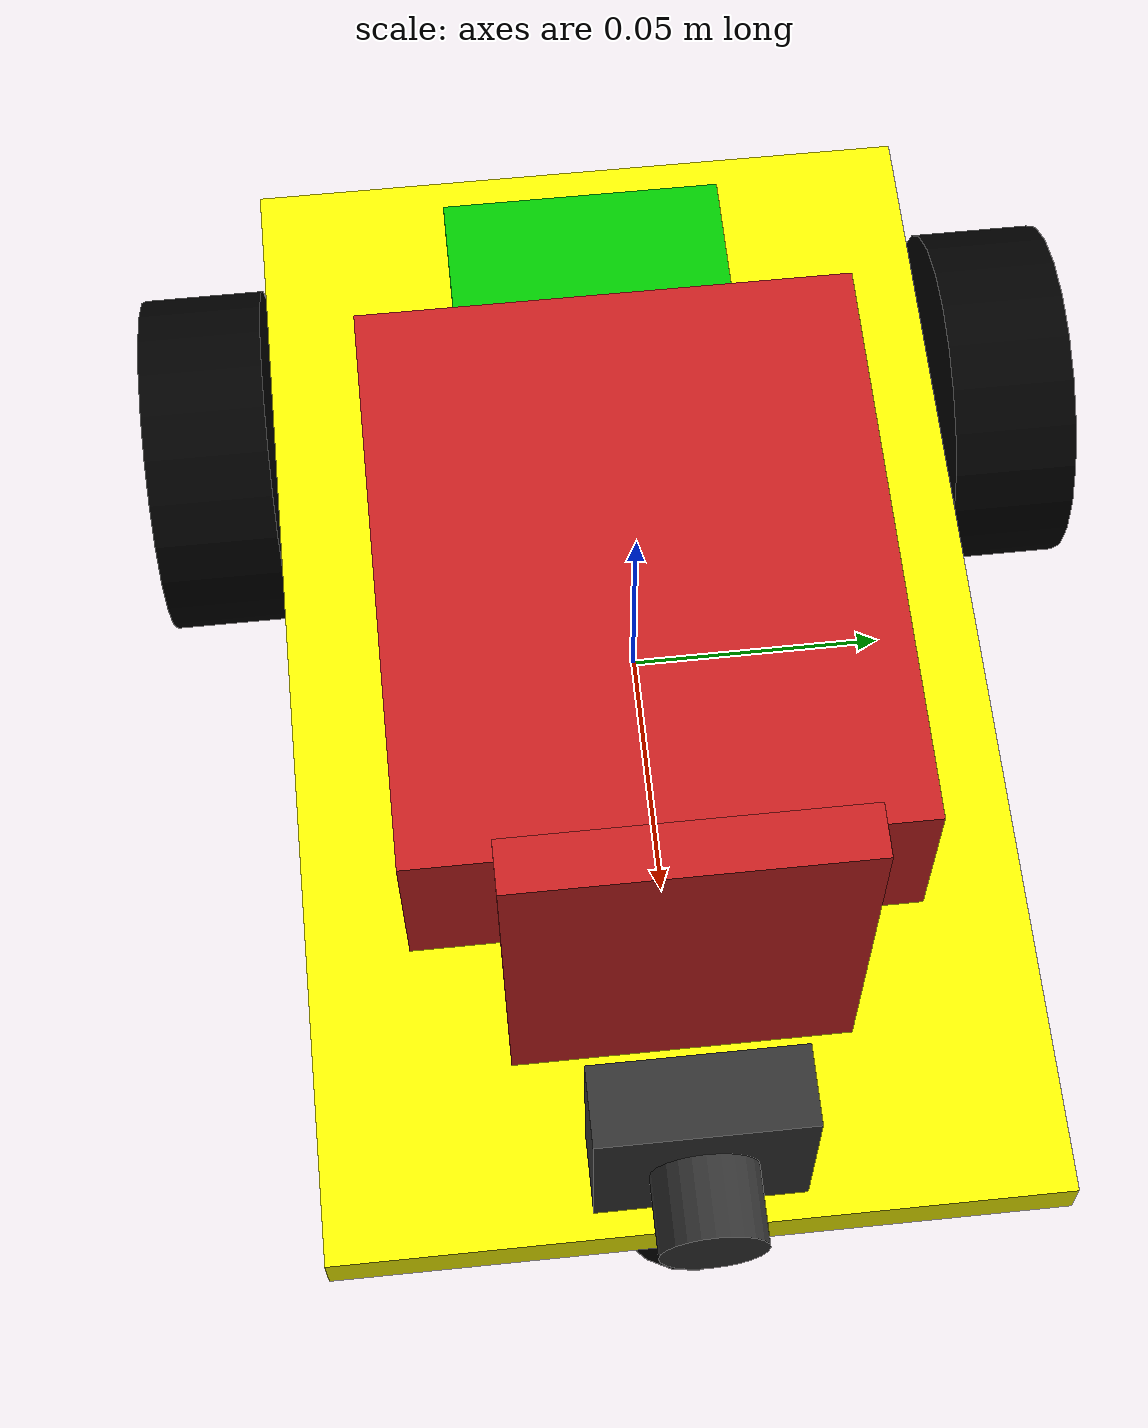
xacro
<?xml version='1.0'?>

<!-- choose a name space and start xacro -->
<robot name="dr_robotas"
	xmlns:xacro="http://www.ros.org/wiki/xacro">

	<!-- Start by including all required xacro files which hold the macros -->
	<xacro:include filename="$(find dviratis_robotas)/urdf/diff_drive.gazebo" />
	<xacro:include filename="$(find dviratis_robotas)/urdf/materials.xacro" />
	<xacro:include filename="$(find dviratis_robotas)/urdf/macros.xacro" />
	<xacro:include filename="$(find dviratis_robotas)/urdf/parameter.xacro" />

	<!-- Create a dummy link as base link -->
	<link name='base_link'>
		<pose>0 0 0 0 0 0</pose>
	</link>
	<joint type="fixed" name="base_link_to_chassis">
		<child link="chassis_link"/>
		<parent link="base_link"/>
	</joint>

	<!-- Define the chassis of the differential drive robot, which is our base -->
	<link name='chassis_link'>
		<!-- Define inertial system for the chassis -->
		<inertial>
			<mass value="${m_chassis}"/>
			<xacro:box_inertia m="${m_chassis}" x="${x_chassis}" y="${y_chassis}" z="${z_chassis}"/>
		</inertial>
		<!-- Define collision sorrounding box -->
		<collision name='collision'>
			<origin xyz="0 0 0" rpy=" 0 0 0"/>
			<geometry>
				<box size="${x_chassis} ${y_chassis} ${z_chassis}"/>
			</geometry>
		</collision>
		<!-- Define visualization structure -->
		<visual name='base_link_visual'>
			<origin xyz="0 0 0" rpy=" 0 0 0"/>
			<geometry>
				<box size="${x_chassis} ${y_chassis} ${z_chassis}"/>
			</geometry>
			<material name="yellow"/>
		</visual>

		<!-- RPY and batt block -->
		<collision name='batt_rpy_collision'>
			<origin xyz="${offset_rpybat} 0 ${z_rpybat/2+z_chassis/2}" rpy=" 0 0 0"/>
			<geometry>
				<box size="${x_rpybat} ${y_rpybat} ${z_rpybat}" />
			</geometry>
			<surface>
				<friction>
					<ode>
						<mu>0</mu>
						<mu2>0</mu2>
						<slip1>1.0</slip1>
						<slip2>1.0</slip2>
					</ode>
				</friction>
			</surface>
		</collision>
		<visual name='batt_rpy_visual'>
			<origin xyz="${offset_rpybat} 0 ${z_rpybat/2+z_chassis/2}" rpy=" 0 0 0"/>
			<geometry>
				<box size="${x_rpybat} ${y_rpybat} ${z_rpybat}" />
			</geometry>
			<material name="red">
				<color rgba="0.80078125 0.12890625 0.1328125 1.0"/>
			</material>
		</visual>

		<!-- Add the caster wheel! Here we simply assume complete slippage, thus we do not require that it rotates! -->
		<collision name='caster_collision'>
			<origin xyz="${-(r_wheel/2)+x_chassis/2} 0 ${-r_wheel/2-z_chassis/2}" rpy=" 0 0 0"/>
			<geometry>
				<sphere radius="${r_wheel/2}"/>
			</geometry>
			<surface>
				<friction>
					<ode>
						<mu>0</mu>
						<mu2>0</mu2>
						<slip1>1.0</slip1>
						<slip2>1.0</slip2>
					</ode>
				</friction>
			</surface>
		</collision>
		<visual name='caster_visual'>
			<origin xyz="${-(r_wheel/2)+x_chassis/2} 0 ${-r_wheel/2-z_chassis/2}" rpy=" 0 0 0"/>
			<geometry>
				<sphere radius="${r_wheel/2}"/>
			</geometry>
			<material name="black"/>
		</visual>
	</link>

	<!-- Radar -->
	<link name="radar">
		<visual>
			<origin xyz="0 0 ${-z_radar/4}" rpy="0 0 0"/>
			<geometry>
				<box size="${x_radar} ${y_radar} ${z_radar}" />
			</geometry>
			<material name="red"/>
		</visual>
		<collision>
			<geometry>
				<box size="${x_radar} ${y_radar} ${z_radar}" />
			</geometry>
		</collision>
	</link>

	<joint type="fixed" name="base_link_to_radar">
		<origin xyz="${0.015+x_radar/2+x_rpybat/2+offset_rpybat} 0 ${z_radar/2+z_chassis/2+z_radar/4}" rpy="0 0 0"/>
		<child link="radar"/>
		<parent link="base_link"/>
	</joint>

	<!-- Camera -->
	<link name="camera_link">
		<!-- lens -->
		<visual name="cam_lens_visual">
			<origin xyz="0 0 0" rpy="0 1.5707 0"/>
			<geometry>
				<cylinder radius="${r_camera}" length="${h_camera}"/>
			</geometry>
			<material name="grey"/>
		</visual>
		<collision name="cam_lens_collision">
			<origin xyz="0 0 0" rpy="0 1.5707 0"/>
			<geometry>
				<cylinder radius="${r_camera}" length="${h_camera}"/>
			</geometry>
		</collision>

		<!-- chassis -->
		<visual name="cam_chassis_visual">
			<origin xyz="${-h_camera/2+h_camera/4} 0 0" rpy="0 0 0"/>
			<geometry>
				<box size="${h_camera/2} ${xy_cam_chassis} ${xy_cam_chassis}" />
			</geometry>
			<material name="grey"/>
		</visual>
		<collision name="cam_chassis_collision">
			<geometry>
				<box size="${xy_cam_chassis} ${xy_cam_chassis} ${h_camera/3}" />
			</geometry>
		</collision>
	</link>

	<joint type="fixed" name="base_link_to_cam">
		<origin xyz="${h_camera/2+0.015*2+x_radar+(x_rpybat/2+offset_rpybat)} 0 ${xy_cam_chassis/2+z_chassis/2}" rpy="0 0 0"/>
		<child link="camera_link"/>
		<parent link="base_link"/>
	</joint>

	<link name="pcb_link">
		<visual name="pcb_link_visual">
			<geometry>
				<box size="${x_pcb} ${y_pcb} ${z_pcb}" />
			</geometry>
			<material name="green"/>
		</visual>
		<collision name="pcb_link_collision">
			<geometry>
				<box size="${x_pcb} ${y_pcb} ${z_pcb}" />
			</geometry>
		</collision>
	</link>

	<joint type="fixed" name="base_link_to_pcb">
		<origin xyz="${-(x_pcb/2+x_rpybat/2-offset_rpybat+0.01)} 0 ${z_pcb/2+z_chassis/2}" rpy="0 0 0"/>
		<child link="pcb_link"/>
		<parent link="base_link"/>
	</joint>

	<!-- Add the wheels for the robot -->
	<link name="left_wheel">
		<collision name="collision">
			<origin xyz="0 0 0" rpy="0 1.5707 1.5707"/>
			<geometry>
				<cylinder radius="${r_wheel}" length="${h_wheel}"/>
			</geometry>
		</collision>
		<visual name="left_wheel_visual">
			<origin xyz="0 0 0" rpy="0 1.5707 1.5707"/>
			<geometry>
				<cylinder radius="${r_wheel}" length="${h_wheel}"/>
			</geometry>
			<material name="black"/>
		</visual>
		<inertial>
			<origin xyz="0 0 0" rpy="0 1.5707 1.5707"/>
			<mass value="${m_wheel}"/>
			<cylinder_inertia m="${m_wheel}" r="${r_wheel}" h="${h_wheel}"/>
			<xacro:cylinder_inertia m="${m_wheel}" r="${r_wheel}" h="${h_wheel}"/>
		</inertial>
	</link>

	<link name="right_wheel">
		<collision name="collision">
			<origin xyz="0 0 0" rpy="0 1.5707 1.5707"/>
			<geometry>
				<cylinder radius="${r_wheel}" length="${h_wheel}"/>
			</geometry>
		</collision>
		<visual name="right_wheel_visual">
			<origin xyz="0 0 0" rpy="0 1.5707 1.5707"/>
			<geometry>
				<cylinder radius="${r_wheel}" length="${h_wheel}"/>
			</geometry>
			<material name="black"/>
		</visual>
		<inertial>
			<origin xyz="0 0 0" rpy="0 1.5707 1.5707"/>
			<mass value="${m_wheel}"/>
			<cylinder_inertia m="${m_wheel}" r="${r_wheel}" h="${h_wheel}"/>
			<xacro:cylinder_inertia m="${m_wheel}" r="${r_wheel}" h="${h_wheel}"/>
		</inertial>
	</link>

	<!-- Set joints for the wheels which can be controlled over ROS -->
	<joint type="continuous" name="left_wheel_hinge">
		<origin xyz="${-x_chassis/4} ${y_chassis/2+h_wheel/2} ${-z_chassis/2}" rpy="0 0 0"/>
		<child link="left_wheel"/>
		<parent link="base_link"/>
		<axis xyz="0 1 0" rpy="0 0 0"/>
		<limit effort="10000" velocity="1000"/>
		<joint_properties damping="1.0" friction="1.0"/>
	</joint>

	<joint type="continuous" name="right_wheel_hinge">
		<origin xyz="${-x_chassis/4} ${-y_chassis/2-h_wheel/2} ${-z_chassis/2}" rpy="0 0 0"/>
		<child link="right_wheel"/>
		<parent link="base_link"/>
		<axis xyz="0 1 0" rpy="0 0 0"/>
		<limit effort="10000" velocity="1000"/>
		<joint_properties damping="1.0" friction="1.0"/>
	</joint>

</robot>

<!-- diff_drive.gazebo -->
<robot xmlns:xacro="http://www.ros.org/wiki/xacro">
  <xacro:include filename="$(find dviratis_robotas)/urdf/parameter.xacro" />

  <!-- Differential Drive controller from Gazebo, TODO: Add noise by adapting the plugin -->
  <gazebo>
    <plugin name="differential_drive_controller" filename="libgazebo_ros_diff_drive.so">
      <alwaysOn>true</alwaysOn>
      <updateRate>20</updateRate>
      <leftJoint>left_wheel_hinge</leftJoint>
      <rightJoint>right_wheel_hinge</rightJoint>
      <wheelSeparation>${L_wheel}</wheelSeparation>
      <wheelDiameter>${r_wheel*2}</wheelDiameter>
      <torque>${torque_wheel}</torque>
      <commandTopic>cmd_vel</commandTopic>
      <odometryTopic>odom</odometryTopic>
      <odometryFrame>odom</odometryFrame>
      <robotBaseFrame>base_link</robotBaseFrame>
      <legacyMode>false</legacyMode>
    </plugin>
  </gazebo>

  <!-- Hukuyo Laser Plugin -->
  <gazebo reference="radar">
    <material>Gazebo/Red</material>
    <sensor type="ray" name="head_hokuyo_sensor">
      <pose>0 0 0 0 0 0</pose>
      <visualize>false</visualize>
      <update_rate>20</update_rate>
      <ray>
        <scan>
          <horizontal>
            <samples>100</samples>
            <resolution>1</resolution>
            <min_angle>-1.0</min_angle>
            <max_angle>1.0</max_angle>
          </horizontal>
        </scan>
        <range>
          <min>0.10</min>
          <max>5.0</max>
          <resolution>0.01</resolution>
        </range>
        <noise>
          <type>gaussian</type>
          <mean>0.0</mean>
          <stddev>0.01</stddev>
        </noise>
      </ray>
      <plugin name="gazebo_ros_head_hokuyo_controller" filename="libgazebo_ros_laser.so">
        <topicName>/scan</topicName>
        <frameName>/radar</frameName>
      </plugin>
    </sensor>
  </gazebo>

  <!-- RGB Camera Plugin -->
  <gazebo reference="camera_link">
    <material>Gazebo/Black</material>
    <sensor type="camera" name="camera">
      <update_rate>20.0</update_rate>
      <camera name="front">
        <horizontal_fov>1.3962634</horizontal_fov>
        <image>
          <width>800</width>
          <height>800</height>
          <format>R8G8B8</format>
        </image>
        <clip>
          <near>0.02</near>
          <far>300</far>
        </clip>
        <noise>
          <type>gaussian</type>
          <mean>0.0</mean>
          <stddev>0.007</stddev>
        </noise>
      </camera>
      <plugin name="camera_controller" filename="libgazebo_ros_camera.so">
        <alwaysOn>true</alwaysOn>
        <updateRate>0.0</updateRate>
        <cameraName>camera</cameraName>
        <imageTopicName>image_raw</imageTopicName>
        <cameraInfoTopicName>camera_info</cameraInfoTopicName>
        <frameName>camera_link</frameName>
        <hackBaseline>0.07</hackBaseline>
        <distortionK1>0.0</distortionK1>
        <distortionK2>0.0</distortionK2>
        <distortionK3>0.0</distortionK3>
        <distortionT1>0.0</distortionT1>
        <distortionT2>0.0</distortionT2>
      </plugin>
    </sensor>
  </gazebo>

  <!-- Paint the robot -->
  <gazebo reference="base_link">
    <material>Gazebo/Orange</material>
  </gazebo>

  <gazebo reference="right_wheel">
    <material>Gazebo/Black</material>
  </gazebo>

  <gazebo reference="left_wheel">
    <material>Gazebo/Black</material>
  </gazebo>

  <gazebo reference="pcb_link">
    <material>Gazebo/Green</material>
  </gazebo>

</robot>

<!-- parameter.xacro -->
<robot xmlns:xacro="http://www.ros.org/wiki/xacro">

    <!-- Define parameter for the differential drive robot -->
    <!-- Parameter for the chassis, size [m] and mass [kg] -->
    <xacro:property name="x_chassis" value="0.24" />
    <xacro:property name="y_chassis" value="0.14" />
    <xacro:property name="z_chassis" value="0.01" />
    <xacro:property name="m_chassis" value="2" />

    <!-- RPY and battery -->
    <xacro:property name="x_rpybat" value="0.12" />
    <xacro:property name="y_rpybat" value="0.1" />
    <xacro:property name="z_rpybat" value="0.04" />
    <xacro:property name="offset_rpybat" value="-0.00" />

    <!-- Parameter for the wheels, radius [m], height [m], mass [kg], torque [Nm], wheelbase [m] -->
    <xacro:property name="r_wheel" value="0.035"/>
    <xacro:property name="h_wheel" value="0.025" />
    <xacro:property name="m_wheel" value="0.5" />
    <xacro:property name="torque_wheel" value="1" />
    <xacro:property name="L_wheel" value="${y_chassis+2*h_wheel}" />

    <!-- Camera parameters -->
    <xacro:property name="r_camera" value="0.01" />
    <xacro:property name="h_camera" value="0.03" />
    <xacro:property name="xy_cam_chassis" value="0.04" />

    <!-- Radar parameters -->
    <xacro:property name="x_radar" value="0.01" />
    <xacro:property name="y_radar" value="0.065" />
    <xacro:property name="z_radar" value="0.085" />

    <!-- PCB -->
    <xacro:property name="x_pcb" value="0.04" />
    <xacro:property name="y_pcb" value="0.06" />
    <xacro:property name="z_pcb" value="0.005" />
    <xacro:property name="m_pcb" value="0.05" />
</robot>

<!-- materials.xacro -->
<robot xmlns:xacro="http://www.ros.org/wiki/xacro">

    <material name="orange">
        <color rgba="${255/255} ${108/255} ${10/255} 1.0"/>
    </material>

    <material name="black">
        <color rgba="0.0 0.0 0.0 1.0"/>
    </material>

    <material name="blue">
        <color rgba="0.203125 0.23828125 0.28515625 1.0"/>
    </material>

    <material name="green">
        <color rgba="0.0 0.8 0.0 1.0"/>
    </material>

    <material name="grey">
        <color rgba="0.2 0.2 0.2 1.0"/>
    </material>

    <material name="brown">
        <color rgba="0.870588235294 0.811764705882 0.764705882353 1.0"/>
    </material>

    <material name="red">
        <color rgba="0.80078125 0.12890625 0.1328125 1.0"/>
    </material>

    <material name="white">
        <color rgba="1.0 1.0 1.0 1.0"/>
    </material>

    <material name="yellow">
        <color rgba="1.0 1.0 0 1.0"/>
    </material>
</robot>
